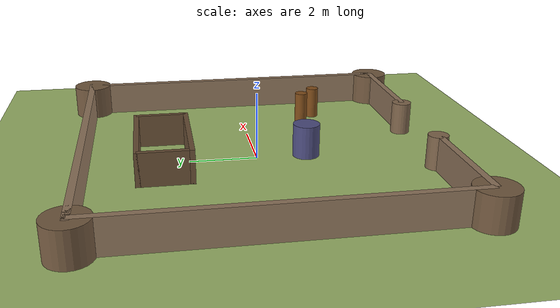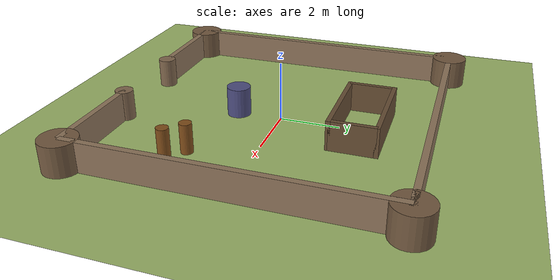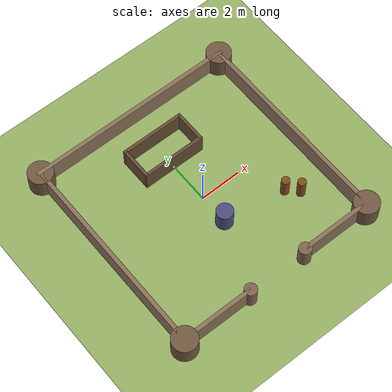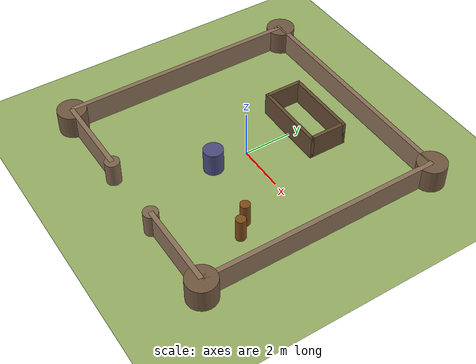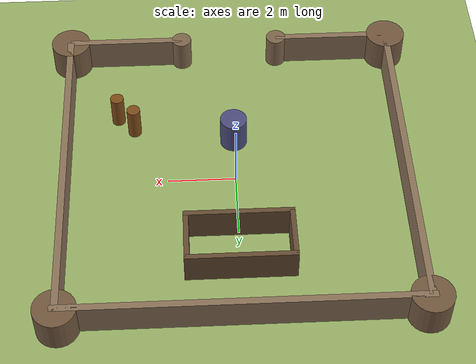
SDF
<?xml version="1.0" ?>
<!-- WORLD: Castle — Castle with outer walls, corner towers, gate, and inner keep -->
<sdf version="1.6">
  <world name="default">
    <physics name="1ms" type="ignored"><max_step_size>0.001</max_step_size><real_time_factor>1.0</real_time_factor></physics>
    <plugin filename="libignition-gazebo-physics-system.so" name="ignition::gazebo::systems::Physics"/>
    <plugin filename="libignition-gazebo-user-commands-system.so" name="ignition::gazebo::systems::UserCommands"/>
    <plugin filename="libignition-gazebo-scene-broadcaster-system.so" name="ignition::gazebo::systems::SceneBroadcaster"/>
    <light type="directional" name="sun"><cast_shadows>true</cast_shadows><pose>0 0 10 0 0 0</pose><diffuse>0.85 0.85 0.85 1</diffuse><specular>0.2 0.2 0.2 1</specular><attenuation><range>1000</range><constant>0.9</constant><linear>0.01</linear><quadratic>0.001</quadratic></attenuation><direction>-0.5 0.1 -0.9</direction></light>
    <model name="ground"><static>true</static><link name="l"><collision name="c"><geometry><plane><normal>0 0 1</normal><size>100 100</size></plane></geometry></collision><visual name="v"><geometry><plane><normal>0 0 1</normal><size>100 100</size></plane></geometry><material><ambient>0.6 0.7 0.4 1</ambient><diffuse>0.6 0.7 0.4 1</diffuse></material></visual></link></model>

    <!-- Outer castle walls (10×10m) with gate at south -->
    <model name="cn"><static>true</static><pose>0 5 0.5 0 0 0</pose><link name="l"><collision name="c"><geometry><box><size>10.3 0.2 1</size></box></geometry></collision><visual name="v"><geometry><box><size>10.3 0.2 1</size></box></geometry><material><ambient>0.55 0.45 0.35 1</ambient><diffuse>0.55 0.45 0.35 1</diffuse></material></visual></link></model>
    <model name="ce"><static>true</static><pose>5 0 0.5 0 0 0</pose><link name="l"><collision name="c"><geometry><box><size>0.2 10 1</size></box></geometry></collision><visual name="v"><geometry><box><size>0.2 10 1</size></box></geometry><material><ambient>0.55 0.45 0.35 1</ambient><diffuse>0.55 0.45 0.35 1</diffuse></material></visual></link></model>
    <model name="cw"><static>true</static><pose>-5 0 0.5 0 0 0</pose><link name="l"><collision name="c"><geometry><box><size>0.2 10 1</size></box></geometry></collision><visual name="v"><geometry><box><size>0.2 10 1</size></box></geometry><material><ambient>0.55 0.45 0.35 1</ambient><diffuse>0.55 0.45 0.35 1</diffuse></material></visual></link></model>
    <!-- South wall with 1.5m gate opening -->
    <model name="csl"><static>true</static><pose>-3.25 -5 0.5 0 0 0</pose><link name="l"><collision name="c"><geometry><box><size>3.5 0.2 1</size></box></geometry></collision><visual name="v"><geometry><box><size>3.5 0.2 1</size></box></geometry><material><ambient>0.55 0.45 0.35 1</ambient><diffuse>0.55 0.45 0.35 1</diffuse></material></visual></link></model>
    <model name="csr"><static>true</static><pose>3.25 -5 0.5 0 0 0</pose><link name="l"><collision name="c"><geometry><box><size>3.5 0.2 1</size></box></geometry></collision><visual name="v"><geometry><box><size>3.5 0.2 1</size></box></geometry><material><ambient>0.55 0.45 0.35 1</ambient><diffuse>0.55 0.45 0.35 1</diffuse></material></visual></link></model>

    <!-- 4 corner towers (large cylinders) -->
    <model name="t_ne"><static>true</static><pose>5 5 0.5 0 0 0</pose><link name="l"><collision name="c"><geometry><cylinder><radius>0.6</radius><length>1</length></cylinder></geometry></collision><visual name="v"><geometry><cylinder><radius>0.6</radius><length>1</length></cylinder></geometry><material><ambient>0.45 0.35 0.25 1</ambient><diffuse>0.45 0.35 0.25 1</diffuse></material></visual></link></model>
    <model name="t_nw"><static>true</static><pose>-5 5 0.5 0 0 0</pose><link name="l"><collision name="c"><geometry><cylinder><radius>0.6</radius><length>1</length></cylinder></geometry></collision><visual name="v"><geometry><cylinder><radius>0.6</radius><length>1</length></cylinder></geometry><material><ambient>0.45 0.35 0.25 1</ambient><diffuse>0.45 0.35 0.25 1</diffuse></material></visual></link></model>
    <model name="t_se"><static>true</static><pose>5 -5 0.5 0 0 0</pose><link name="l"><collision name="c"><geometry><cylinder><radius>0.6</radius><length>1</length></cylinder></geometry></collision><visual name="v"><geometry><cylinder><radius>0.6</radius><length>1</length></cylinder></geometry><material><ambient>0.45 0.35 0.25 1</ambient><diffuse>0.45 0.35 0.25 1</diffuse></material></visual></link></model>
    <model name="t_sw"><static>true</static><pose>-5 -5 0.5 0 0 0</pose><link name="l"><collision name="c"><geometry><cylinder><radius>0.6</radius><length>1</length></cylinder></geometry></collision><visual name="v"><geometry><cylinder><radius>0.6</radius><length>1</length></cylinder></geometry><material><ambient>0.45 0.35 0.25 1</ambient><diffuse>0.45 0.35 0.25 1</diffuse></material></visual></link></model>

    <!-- Gate towers (flanking the opening) -->
    <model name="gt_l"><static>true</static><pose>-1.5 -5 0.5 0 0 0</pose><link name="l"><collision name="c"><geometry><cylinder><radius>0.3</radius><length>1</length></cylinder></geometry></collision><visual name="v"><geometry><cylinder><radius>0.3</radius><length>1</length></cylinder></geometry><material><ambient>0.5 0.4 0.3 1</ambient><diffuse>0.5 0.4 0.3 1</diffuse></material></visual></link></model>
    <model name="gt_r"><static>true</static><pose>1.5 -5 0.5 0 0 0</pose><link name="l"><collision name="c"><geometry><cylinder><radius>0.3</radius><length>1</length></cylinder></geometry></collision><visual name="v"><geometry><cylinder><radius>0.3</radius><length>1</length></cylinder></geometry><material><ambient>0.5 0.4 0.3 1</ambient><diffuse>0.5 0.4 0.3 1</diffuse></material></visual></link></model>

    <!-- Inner keep (3×3m box in the north section) -->
    <model name="kn"><static>true</static><pose>0 3.5 0.5 0 0 0</pose><link name="l"><collision name="c"><geometry><box><size>3.15 0.15 1</size></box></geometry></collision><visual name="v"><geometry><box><size>3.15 0.15 1</size></box></geometry><material><ambient>0.4 0.3 0.2 1</ambient><diffuse>0.4 0.3 0.2 1</diffuse></material></visual></link></model>
    <model name="ks"><static>true</static><pose>0 2 0.5 0 0 0</pose><link name="l"><collision name="c"><geometry><box><size>3.15 0.15 1</size></box></geometry></collision><visual name="v"><geometry><box><size>3.15 0.15 1</size></box></geometry><material><ambient>0.4 0.3 0.2 1</ambient><diffuse>0.4 0.3 0.2 1</diffuse></material></visual></link></model>
    <model name="ke"><static>true</static><pose>1.5 2.75 0.5 0 0 0</pose><link name="l"><collision name="c"><geometry><box><size>0.15 1.5 1</size></box></geometry></collision><visual name="v"><geometry><box><size>0.15 1.5 1</size></box></geometry><material><ambient>0.4 0.3 0.2 1</ambient><diffuse>0.4 0.3 0.2 1</diffuse></material></visual></link></model>
    <model name="kw"><static>true</static><pose>-1.5 2.75 0.5 0 0 0</pose><link name="l"><collision name="c"><geometry><box><size>0.15 1.5 1</size></box></geometry></collision><visual name="v"><geometry><box><size>0.15 1.5 1</size></box></geometry><material><ambient>0.4 0.3 0.2 1</ambient><diffuse>0.4 0.3 0.2 1</diffuse></material></visual></link></model>

    <!-- Courtyard well (center cylinder) -->
    <model name="well"><static>true</static><pose>0 -1.5 0.5 0 0 0</pose><link name="l"><collision name="c"><geometry><cylinder><radius>0.4</radius><length>1</length></cylinder></geometry></collision><visual name="v"><geometry><cylinder><radius>0.4</radius><length>1</length></cylinder></geometry><material><ambient>0.3 0.3 0.5 1</ambient><diffuse>0.3 0.3 0.5 1</diffuse></material></visual></link></model>
    <!-- Barrel storage (two small cylinders) -->
    <model name="b1"><static>true</static><pose>3 -2 0.5 0 0 0</pose><link name="l"><collision name="c"><geometry><cylinder><radius>0.2</radius><length>1</length></cylinder></geometry></collision><visual name="v"><geometry><cylinder><radius>0.2</radius><length>1</length></cylinder></geometry><material><ambient>0.5 0.3 0.1 1</ambient><diffuse>0.5 0.3 0.1 1</diffuse></material></visual></link></model>
    <model name="b2"><static>true</static><pose>3.5 -2.5 0.5 0 0 0</pose><link name="l"><collision name="c"><geometry><cylinder><radius>0.2</radius><length>1</length></cylinder></geometry></collision><visual name="v"><geometry><cylinder><radius>0.2</radius><length>1</length></cylinder></geometry><material><ambient>0.5 0.3 0.1 1</ambient><diffuse>0.5 0.3 0.1 1</diffuse></material></visual></link></model>
  </world>
</sdf>
